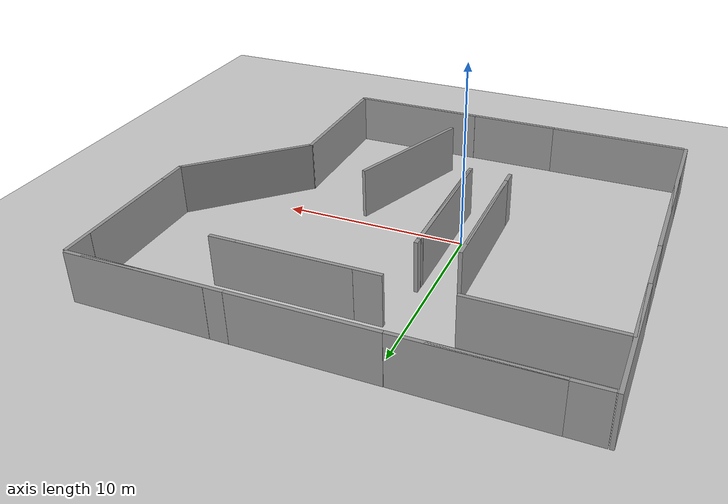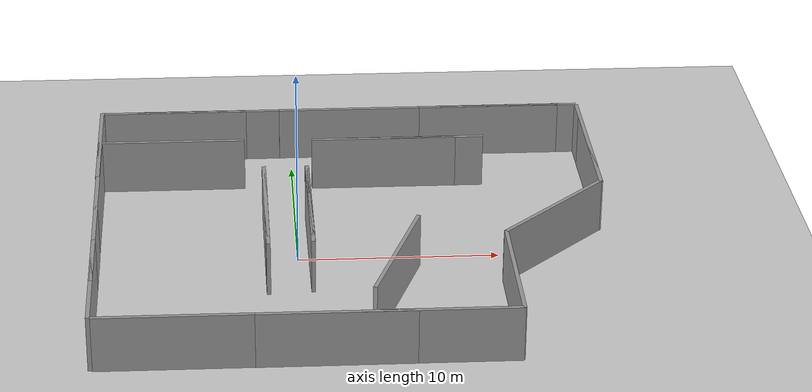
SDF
<sdf version="1.4">
 <world name="default">
  <light name="sun" type="directional">
   <pose>0 0 10 0 -0 0</pose>
   <diffuse>0.8 0.8 0.8 1</diffuse>
   <specular>0.2 0.2 0.2 1</specular>
   <attenuation>
    <range>1000</range>
    <constant>0.9</constant>
    <linear>0.01</linear>
    <quadratic>0.001</quadratic>
   </attenuation>
   <direction>-0.5 0.1 -0.9</direction>
  </light>
  <model name="ground_plane">
   <static>1</static>
   <link name="link">
    <collision name="collision">
     <geometry><plane><normal>0 0 1</normal><size>100 100</size></plane></geometry>
     <surface>
      <contact><collide_bitmask>65535</collide_bitmask></contact>
      <friction><ode><mu>100</mu><mu2>50</mu2></ode></friction>
     </surface>
    </collision>
    <visual name="visual">
     <cast_shadows>0</cast_shadows>
     <geometry><plane><normal>0 0 1</normal><size>100 100</size></plane></geometry>
     <material>
      <script><uri>file://media/materials/scripts/gazebo.material</uri><name>Gazebo/Grey</name></script>
     </material>
    </visual>
   </link>
  </model>
  <gravity>0 0 -9.8</gravity>
  <magnetic_field>6e-06 2.3e-05 -4.2e-05</magnetic_field>
  <atmosphere type="adiabatic"/>
  <physics name="default_physics" default="0" type="ode">
   <max_step_size>0.001</max_step_size>
   <real_time_factor>1</real_time_factor>
   <real_time_update_rate>1000</real_time_update_rate>
  </physics>
  <scene><ambient>0.4 0.4 0.4 1</ambient><background>0.7 0.7 0.7 1</background><shadows>1</shadows></scene>
  <audio><device>default</device></audio>
  <spherical_coordinates>
   <surface_model>EARTH_WGS84</surface_model>
   <latitude_deg>0</latitude_deg>
   <longitude_deg>0</longitude_deg>
   <elevation>0</elevation>
   <heading_deg>0</heading_deg>
  </spherical_coordinates>
  <model name="grey_wall">
   <static>1</static>
   <link name="link">
    <pose>0 0 1.4 0 -0 0</pose>
    <collision name="collision"><geometry><box><size>7.5 0.2 2.8</size></box></geometry></collision>
    <visual name="visual">
     <cast_shadows>0</cast_shadows>
     <geometry><box><size>7.5 0.2 2.8</size></box></geometry>
     <material>
      <script>
       <uri>model://grey_wall/materials/scripts</uri>
       <uri>model://grey_wall/materials/textures</uri>
       <name>vrc/grey_wall</name>
      </script>
     </material>
    </visual>
   </link>
   <pose>-9.93434 4.396 0 0 0 -1.56552</pose>
  </model>
  <model name="grey_wall_clone">
   <static>1</static>
   <link name="link">
    <pose>0 0 1.4 0 -0 0</pose>
    <collision name="collision"><geometry><box><size>7.5 0.2 2.8</size></box></geometry></collision>
    <visual name="visual">
     <cast_shadows>0</cast_shadows>
     <geometry><box><size>7.5 0.2 2.8</size></box></geometry>
     <material>
      <script>
       <uri>model://grey_wall/materials/scripts</uri>
       <uri>model://grey_wall/materials/textures</uri>
       <name>vrc/grey_wall</name>
      </script>
     </material>
    </visual>
   </link>
   <pose>-9.88683 -2.85462 0 0 0 -1.56552</pose>
  </model>
  <model name="grey_wall_clone_0">
   <static>1</static>
   <link name="link">
    <pose>0 0 1.4 0 -0 0</pose>
    <collision name="collision"><geometry><box><size>7.5 0.2 2.8</size></box></geometry></collision>
    <visual name="visual">
     <cast_shadows>0</cast_shadows>
     <geometry><box><size>7.5 0.2 2.8</size></box></geometry>
     <material>
      <script>
       <uri>model://grey_wall/materials/scripts</uri>
       <uri>model://grey_wall/materials/textures</uri>
       <name>vrc/grey_wall</name>
      </script>
     </material>
    </visual>
   </link>
   <pose>-9.86665 -6.30322 0 0 0 -1.56552</pose>
  </model>
  <model name="grey_wall_clone_0_clone">
   <static>1</static>
   <link name="link">
    <pose>0 0 1.4 0 -0 0</pose>
    <collision name="collision"><geometry><box><size>7.5 0.2 2.8</size></box></geometry></collision>
    <visual name="visual">
     <cast_shadows>0</cast_shadows>
     <geometry><box><size>7.5 0.2 2.8</size></box></geometry>
     <material>
      <script>
       <uri>model://grey_wall/materials/scripts</uri>
       <uri>model://grey_wall/materials/textures</uri>
       <name>vrc/grey_wall</name>
      </script>
     </material>
    </visual>
   </link>
   <pose>-5.99037 -10.0377 0 0 -0 4.4e-05</pose>
  </model>
  <model name="grey_wall_clone_0_clone_clone">
   <static>1</static>
   <link name="link">
    <pose>0 0 1.4 0 -0 0</pose>
    <collision name="collision"><geometry><box><size>7.5 0.2 2.8</size></box></geometry></collision>
    <visual name="visual">
     <cast_shadows>0</cast_shadows>
     <geometry><box><size>7.5 0.2 2.8</size></box></geometry>
     <material>
      <script>
       <uri>model://grey_wall/materials/scripts</uri>
       <uri>model://grey_wall/materials/textures</uri>
       <name>vrc/grey_wall</name>
      </script>
     </material>
    </visual>
   </link>
   <pose>1.48901 -10.0478 0 0 -0 4.4e-05</pose>
  </model>
  <model name="grey_wall_clone_0_clone_clone_0">
   <static>1</static>
   <link name="link">
    <pose>0 0 1.4 0 -0 0</pose>
    <collision name="collision"><geometry><box><size>7.5 0.2 2.8</size></box></geometry></collision>
    <visual name="visual">
     <cast_shadows>0</cast_shadows>
     <geometry><box><size>7.5 0.2 2.8</size></box></geometry>
     <material>
      <script>
       <uri>model://grey_wall/materials/scripts</uri>
       <uri>model://grey_wall/materials/textures</uri>
       <name>vrc/grey_wall</name>
      </script>
     </material>
    </visual>
   </link>
   <pose>6.38138 -10.037 0 0 -0 4.4e-05</pose>
  </model>
  <model name="grey_wall_clone_0_clone_0">
   <static>1</static>
   <link name="link">
    <pose>0 0 1.4 0 -0 0</pose>
    <collision name="collision"><geometry><box><size>7.5 0.2 2.8</size></box></geometry></collision>
    <visual name="visual">
     <cast_shadows>0</cast_shadows>
     <geometry><box><size>7.5 0.2 2.8</size></box></geometry>
     <material>
      <script>
       <uri>model://grey_wall/materials/scripts</uri>
       <uri>model://grey_wall/materials/textures</uri>
       <name>vrc/grey_wall</name>
      </script>
     </material>
    </visual>
   </link>
   <pose>10.0569 -6.33871 0 0 0 -1.56552</pose>
  </model>
  <model name="grey_wall_clone_0_clone_1">
   <static>1</static>
   <link name="link">
    <pose>0 0 1.4 0 -0 0</pose>
    <collision name="collision"><geometry><box><size>7.5 0.2 2.8</size></box></geometry></collision>
    <visual name="visual">
     <cast_shadows>0</cast_shadows>
     <geometry><box><size>7.5 0.2 2.8</size></box></geometry>
     <material>
      <script>
       <uri>model://grey_wall/materials/scripts</uri>
       <uri>model://grey_wall/materials/textures</uri>
       <name>vrc/grey_wall</name>
      </script>
     </material>
    </visual>
   </link>
   <pose>12.695 -0.090701 0 0 0 -2.37293</pose>
  </model>
  <model name="grey_wall_clone_0_clone_0_clone">
   <static>1</static>
   <link name="link">
    <pose>0 0 1.4 0 -0 0</pose>
    <collision name="collision"><geometry><box><size>7.5 0.2 2.8</size></box></geometry></collision>
    <visual name="visual">
     <cast_shadows>0</cast_shadows>
     <geometry><box><size>7.5 0.2 2.8</size></box></geometry>
     <material>
      <script>
       <uri>model://grey_wall/materials/scripts</uri>
       <uri>model://grey_wall/materials/textures</uri>
       <name>vrc/grey_wall</name>
      </script>
     </material>
    </visual>
   </link>
   <pose>4.64948 -4.3341 0 0 0 -1.91916</pose>
  </model>
  <model name="grey_wall_clone_0_clone_0_clone_0">
   <static>1</static>
   <link name="link">
    <pose>0 0 1.4 0 -0 0</pose>
    <collision name="collision"><geometry><box><size>7.5 0.2 2.8</size></box></geometry></collision>
    <visual name="visual">
     <cast_shadows>0</cast_shadows>
     <geometry><box><size>7.5 0.2 2.8</size></box></geometry>
     <material>
      <script>
       <uri>model://grey_wall/materials/scripts</uri>
       <uri>model://grey_wall/materials/textures</uri>
       <name>vrc/grey_wall</name>
      </script>
     </material>
    </visual>
   </link>
   <pose>15.3518 6.14356 0 0 0 -1.56552</pose>
  </model>
  <model name="grey_wall_clone_0_clone_clone_0_clone">
   <static>1</static>
   <link name="link">
    <pose>0 0 1.4 0 -0 0</pose>
    <collision name="collision"><geometry><box><size>7.5 0.2 2.8</size></box></geometry></collision>
    <visual name="visual">
     <cast_shadows>0</cast_shadows>
     <geometry><box><size>7.5 0.2 2.8</size></box></geometry>
     <material>
      <script>
       <uri>model://grey_wall/materials/scripts</uri>
       <uri>model://grey_wall/materials/textures</uri>
       <name>vrc/grey_wall</name>
      </script>
     </material>
    </visual>
   </link>
   <pose>10.5812 11.5742 0 0 -0 4.4e-05</pose>
  </model>
  <model name="grey_wall_clone_0_clone_clone_0_clone_clone">
   <static>1</static>
   <link name="link">
    <pose>0 0 1.4 0 -0 0</pose>
    <collision name="collision"><geometry><box><size>7.5 0.2 2.8</size></box></geometry></collision>
    <visual name="visual">
     <cast_shadows>0</cast_shadows>
     <geometry><box><size>7.5 0.2 2.8</size></box></geometry>
     <material>
      <script>
       <uri>model://grey_wall/materials/scripts</uri>
       <uri>model://grey_wall/materials/textures</uri>
       <name>vrc/grey_wall</name>
      </script>
     </material>
    </visual>
   </link>
   <pose>3.15812 11.5701 0 0 -0 4.4e-05</pose>
  </model>
  <model name="grey_wall_clone_0_clone_clone_0_clone_clone_clone">
   <static>1</static>
   <link name="link">
    <pose>0 0 1.4 0 -0 0</pose>
    <collision name="collision"><geometry><box><size>7.5 0.2 2.8</size></box></geometry></collision>
    <visual name="visual">
     <cast_shadows>0</cast_shadows>
     <geometry><box><size>7.5 0.2 2.8</size></box></geometry>
     <material>
      <script>
       <uri>model://grey_wall/materials/scripts</uri>
       <uri>model://grey_wall/materials/textures</uri>
       <name>vrc/grey_wall</name>
      </script>
     </material>
    </visual>
   </link>
   <pose>-4.34876 11.5612 0 0 -0 4.4e-05</pose>
  </model>
  <model name="grey_wall_clone_0_clone_clone_0_clone_clone_clone_0">
   <static>1</static>
   <link name="link">
    <pose>0 0 1.4 0 -0 0</pose>
    <collision name="collision"><geometry><box><size>7.5 0.2 2.8</size></box></geometry></collision>
    <visual name="visual">
     <cast_shadows>0</cast_shadows>
     <geometry><box><size>7.5 0.2 2.8</size></box></geometry>
     <material>
      <script>
       <uri>model://grey_wall/materials/scripts</uri>
       <uri>model://grey_wall/materials/textures</uri>
       <name>vrc/grey_wall</name>
      </script>
     </material>
    </visual>
   </link>
   <pose>-6.10573 11.5552 0 0 -0 4.4e-05</pose>
  </model>
  <model name="grey_wall_clone_1">
   <static>1</static>
   <link name="link">
    <pose>0 0 1.4 0 -0 0</pose>
    <collision name="collision"><geometry><box><size>7.5 0.2 2.8</size></box></geometry></collision>
    <visual name="visual">
     <cast_shadows>0</cast_shadows>
     <geometry><box><size>7.5 0.2 2.8</size></box></geometry>
     <material>
      <script>
       <uri>model://grey_wall/materials/scripts</uri>
       <uri>model://grey_wall/materials/textures</uri>
       <name>vrc/grey_wall</name>
      </script>
     </material>
    </visual>
   </link>
   <pose>-9.97844 7.90154 0 0 0 -1.56552</pose>
  </model>
  <model name="grey_wall_clone_0_clone_clone_0_clone_clone_clone_0_clone">
   <static>1</static>
   <link name="link">
    <pose>0 0 1.4 0 -0 0</pose>
    <collision name="collision"><geometry><box><size>7.5 0.2 2.8</size></box></geometry></collision>
    <visual name="visual">
     <cast_shadows>0</cast_shadows>
     <geometry><box><size>7.5 0.2 2.8</size></box></geometry>
     <material>
      <script>
       <uri>model://grey_wall/materials/scripts</uri>
       <uri>model://grey_wall/materials/textures</uri>
       <name>vrc/grey_wall</name>
      </script>
     </material>
    </visual>
   </link>
   <pose>-6.23942 8.03956 0 0 -0 4.4e-05</pose>
  </model>
  <model name="grey_wall_clone_0_clone_clone_0_clone_clone_clone_0_clone_0">
   <static>1</static>
   <link name="link">
    <pose>0 0 1.4 0 -0 0</pose>
    <collision name="collision"><geometry><box><size>7.5 0.2 2.8</size></box></geometry></collision>
    <visual name="visual">
     <cast_shadows>0</cast_shadows>
     <geometry><box><size>7.5 0.2 2.8</size></box></geometry>
     <material>
      <script>
       <uri>model://grey_wall/materials/scripts</uri>
       <uri>model://grey_wall/materials/textures</uri>
       <name>vrc/grey_wall</name>
      </script>
     </material>
    </visual>
   </link>
   <pose>6.19736 7.90383 0 0 -0 4.4e-05</pose>
  </model>
  <model name="grey_wall_clone_0_clone_clone_0_clone_clone_clone_0_clone_1">
   <static>1</static>
   <link name="link">
    <pose>0 0 1.4 0 -0 0</pose>
    <collision name="collision"><geometry><box><size>7.5 0.2 2.8</size></box></geometry></collision>
    <visual name="visual">
     <cast_shadows>0</cast_shadows>
     <geometry><box><size>7.5 0.2 2.8</size></box></geometry>
     <material>
      <script>
       <uri>model://grey_wall/materials/scripts</uri>
       <uri>model://grey_wall/materials/textures</uri>
       <name>vrc/grey_wall</name>
      </script>
     </material>
    </visual>
   </link>
   <pose>4.76041 7.9011 0 0 -0 4.4e-05</pose>
  </model>
  <model name="grey_wall_clone_2">
   <static>1</static>
   <link name="link">
    <pose>0 0 1.4 0 -0 0</pose>
    <collision name="collision"><geometry><box><size>7.5 0.2 2.8</size></box></geometry></collision>
    <visual name="visual">
     <cast_shadows>0</cast_shadows>
     <geometry><box><size>7.5 0.2 2.8</size></box></geometry>
     <material>
      <script>
       <uri>model://grey_wall/materials/scripts</uri>
       <uri>model://grey_wall/materials/textures</uri>
       <name>vrc/grey_wall</name>
      </script>
     </material>
    </visual>
   </link>
   <pose>-1.51662 0.352755 0 0 0 -1.56552</pose>
  </model>
  <model name="grey_wall_clone_3">
   <static>1</static>
   <link name="link">
    <pose>0 0 1.4 0 -0 0</pose>
    <collision name="collision"><geometry><box><size>7.5 0.2 2.8</size></box></geometry></collision>
    <visual name="visual">
     <cast_shadows>0</cast_shadows>
     <geometry><box><size>7.5 0.2 2.8</size></box></geometry>
     <material>
      <script>
       <uri>model://grey_wall/materials/scripts</uri>
       <uri>model://grey_wall/materials/textures</uri>
       <name>vrc/grey_wall</name>
      </script>
     </material>
    </visual>
   </link>
   <pose>-1.52536 1.14902 0 0 0 -1.56552</pose>
  </model>
  <model name="grey_wall_clone_4">
   <static>1</static>
   <link name="link">
    <pose>0 0 1.4 0 -0 0</pose>
    <collision name="collision"><geometry><box><size>7.5 0.2 2.8</size></box></geometry></collision>
    <visual name="visual">
     <cast_shadows>0</cast_shadows>
     <geometry><box><size>7.5 0.2 2.8</size></box></geometry>
     <material>
      <script>
       <uri>model://grey_wall/materials/scripts</uri>
       <uri>model://grey_wall/materials/textures</uri>
       <name>vrc/grey_wall</name>
      </script>
     </material>
    </visual>
   </link>
   <pose>0.651413 0.491303 0 0 0 -1.56552</pose>
  </model>
  <model name="grey_wall_clone_5">
   <static>1</static>
   <link name="link">
    <pose>0 0 1.4 0 -0 0</pose>
    <collision name="collision"><geometry><box><size>7.5 0.2 2.8</size></box></geometry></collision>
    <visual name="visual">
     <cast_shadows>0</cast_shadows>
     <geometry><box><size>7.5 0.2 2.8</size></box></geometry>
     <material>
      <script>
       <uri>model://grey_wall/materials/scripts</uri>
       <uri>model://grey_wall/materials/textures</uri>
       <name>vrc/grey_wall</name>
      </script>
     </material>
    </visual>
   </link>
   <pose>0.660462 0.758345 0 0 0 -1.56552</pose>
  </model>
  <model name="grey_wall_clone_0_clone_0_clone_0_clone">
   <static>1</static>
   <link name="link">
    <pose>0 0 1.4 0 -0 0</pose>
    <collision name="collision"><geometry><box><size>7.5 0.2 2.8</size></box></geometry></collision>
    <visual name="visual">
     <cast_shadows>0</cast_shadows>
     <geometry><box><size>7.5 0.2 2.8</size></box></geometry>
     <material>
      <script>
       <uri>model://grey_wall/materials/scripts</uri>
       <uri>model://grey_wall/materials/textures</uri>
       <name>vrc/grey_wall</name>
      </script>
     </material>
    </visual>
   </link>
   <pose>15.3507 7.76841 0 0 0 -1.56552</pose>
  </model>
  <model name="grey_wall_clone_0_clone_clone_0_clone_clone_0">
   <static>1</static>
   <link name="link">
    <pose>0 0 1.4 0 -0 0</pose>
    <collision name="collision"><geometry><box><size>7.5 0.2 2.8</size></box></geometry></collision>
    <visual name="visual">
     <cast_shadows>0</cast_shadows>
     <geometry><box><size>7.5 0.2 2.8</size></box></geometry>
     <material>
      <script>
       <uri>model://grey_wall/materials/scripts</uri>
       <uri>model://grey_wall/materials/textures</uri>
       <name>vrc/grey_wall</name>
      </script>
     </material>
    </visual>
   </link>
   <pose>11.5618 11.5807 0 0 -0 4.4e-05</pose>
  </model>
  <model name="grey_wall_clone_3_clone">
   <static>1</static>
   <link name="link">
    <pose>0 0 1.4 0 -0 0</pose>
    <collision name="collision"><geometry><box><size>7.5 0.2 2.8</size></box></geometry></collision>
    <visual name="visual">
     <cast_shadows>0</cast_shadows>
     <geometry><box><size>7.5 0.2 2.8</size></box></geometry>
     <material>
      <script>
       <uri>model://grey_wall/materials/scripts</uri>
       <uri>model://grey_wall/materials/textures</uri>
       <name>vrc/grey_wall</name>
      </script>
     </material>
    </visual>
   </link>
   <pose>0.66703 1.14104 0 0 0 -1.56552</pose>
  </model>
 </world>
</sdf>
